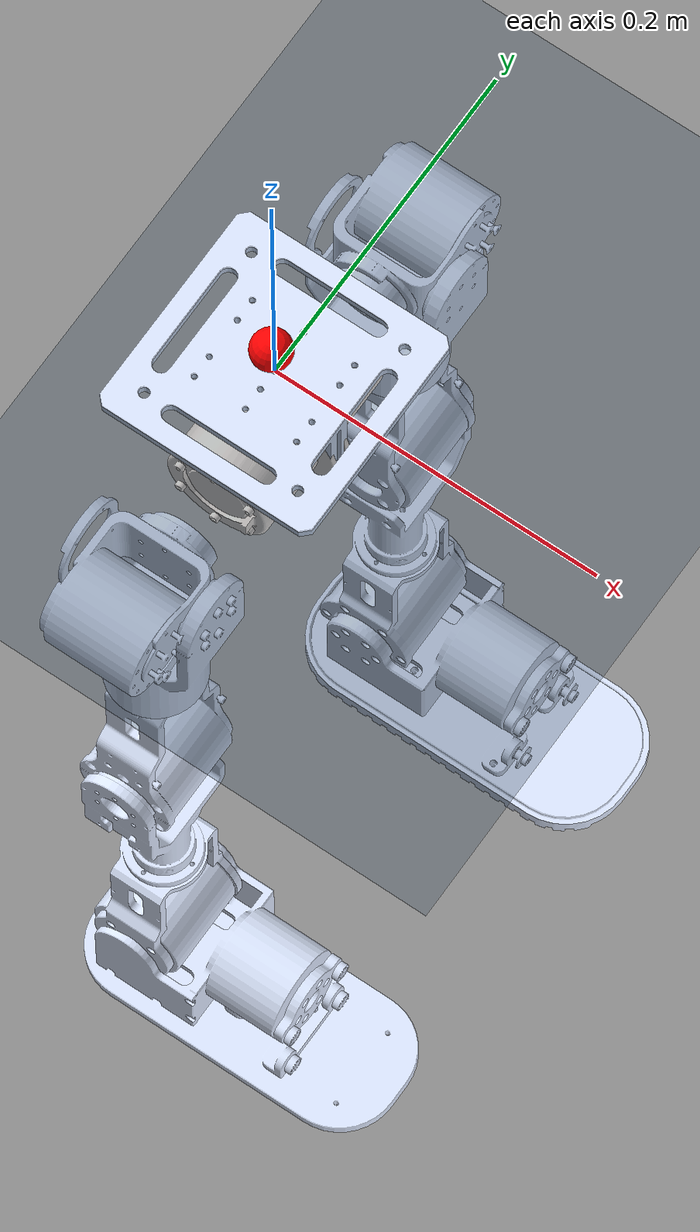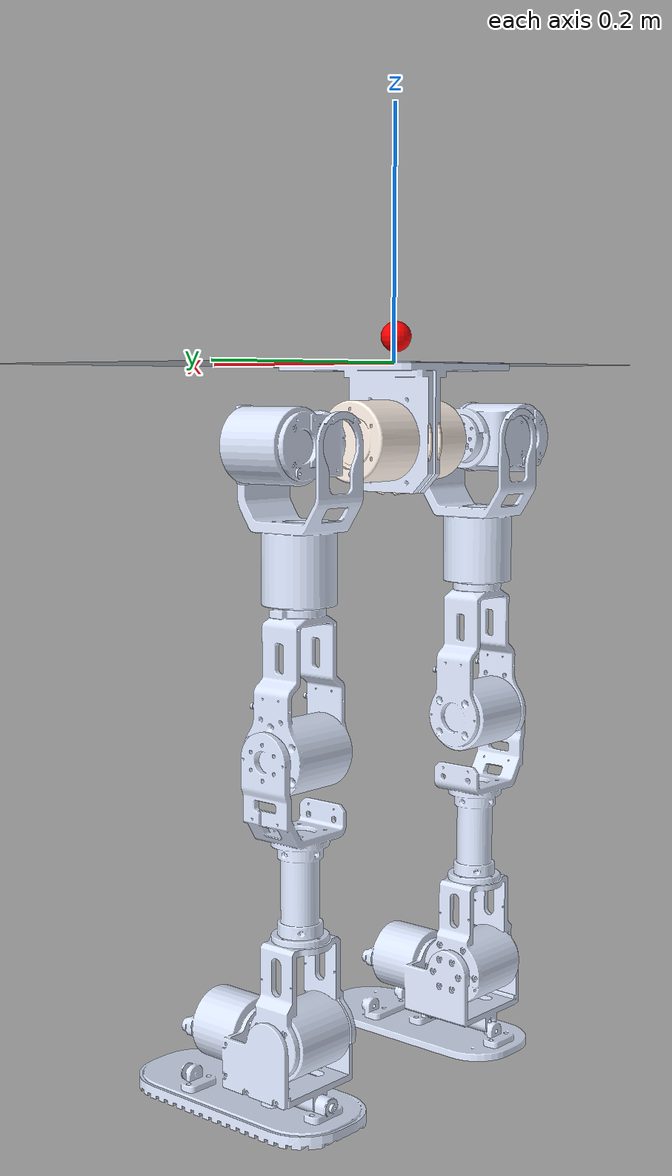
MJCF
<mujoco model="nlegs_limit_scene">
  <include file="nlegs_limit.xml"/>

  <asset>
    <texture name="texplane" type="2d" builtin="checker" rgb1=".2 .3 .4" rgb2=".1 0.15 0.2"
             width="512" height="512" mark="cross" markrgb=".8 .8 .8"/>
    <material name="matplane" reflectance="0." texture="texplane" texrepeat="1 1" texuniform="true"/>
  </asset>

  <worldbody>
    <light directional="true" diffuse=".4 .4 .4" specular="0.1 0.1 0.1" pos="0 0 5.0" dir="0 0 -1" castshadow="false"/>
    <light directional="true" diffuse=".6 .6 .6" specular="0.2 0.2 0.2" pos="0 0 4" dir="0 0 -1"/>
    <geom name="ground" type="plane" size="0 0 1" pos="0.001 0 0" quat="1 0 0 0" material="matplane" condim="1" conaffinity="15"/>
  </worldbody>
</mujoco>

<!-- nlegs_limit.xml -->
<mujoco model="nlegs">
  <compiler angle="radian" meshdir="../meshes/" />
  <default>
    <default class="visual">
      <geom type="mesh" contype="0" conaffinity="0" group="1"/>
    </default>
    <default class="collision">
      <geom type="capsule" contype="1" conaffinity="1" group="3" rgba="0.9373 0.2667 0.2667 1"/>
    </default>
  </default>
  <asset>
    <mesh name="base_link" file="base_link.STL" />
    <mesh name="Link_R0" file="Link_R0.STL" />
    <mesh name="Link_R1" file="Link_R1.STL" />
    <mesh name="Link_R2" file="Link_R2.STL" />
    <mesh name="Link_R3" file="Link_R3.STL" />
    <mesh name="Link_R4" file="Link_R4.STL" />
    <mesh name="Link_R5" file="Link_R5.STL" />
    <mesh name="Link_R6" file="Link_R6.STL" />
    <mesh name="Link_L0" file="Link_L0.STL" />
    <mesh name="Link_L1" file="Link_L1.STL" />
    <mesh name="Link_L2" file="Link_L2.STL" />
    <mesh name="Link_L3" file="Link_L3.STL" />
    <mesh name="Link_L4" file="Link_L4.STL" />
    <mesh name="Link_L5" file="Link_L5.STL" />
    <mesh name="Link_L6" file="Link_L6.STL" />
    <material name="base_mat" rgba="0.8667 0.9098 1 1" specular="0" />
    <material name="Link_R0_mat" rgba="1 0.949 0.9098 1" specular="0" />
    <material name="Link_R1_mat" rgba="0.8667 0.9098 1 1" specular="0" />
    <material name="Link_R2_mat" rgba="0.8667 0.9098 1 1" specular="0" />
    <material name="Link_R3_mat" rgba="0.8667 0.9098 1 1" specular="0" />
    <material name="Link_R4_mat" rgba="0.8667 0.9098 1 1" specular="0" />
    <material name="Link_R5_mat" rgba="0.8667 0.9098 1 1" specular="0" />
    <material name="Link_R6_mat" rgba="0.8667 0.9098 1 1" specular="0" />
    <material name="Link_L0_mat" rgba="1 0.949 0.9098 1" specular="0" />
    <material name="Link_L1_mat" rgba="0.8667 0.9098 1 1" specular="0" />
    <material name="Link_L2_mat" rgba="0.8667 0.9098 1 1" specular="0" />
    <material name="Link_L3_mat" rgba="0.8667 0.9098 1 1" specular="0" />
    <material name="Link_L4_mat" rgba="0.8667 0.9098 1 1" specular="0" />
    <material name="Link_L5_mat" rgba="0.8667 0.9098 1 1" specular="0" />
    <material name="Link_L6_mat" rgba="0.8667 0.9098 1 1" specular="0" />
  </asset>

  <worldbody>
    <!-- base 本体坐标系保持恒等(浮动根, 恒等出生即正立); 倒置 180°(Rx) 已烘焙进 base 外壳/惯量/imu 朝向及 R0/L0 挂点偏移, 与 body-quat 版物理等价 -->
    <body name="base" pos="0 0 0">
      <freejoint/>
      <site name="imu" pos="0 0 0" quat="1 0 0 0" group="3"/>
      <!-- body 版 base 惯性；质心按两侧髋 pitch 中点对齐后换算到旧版 base 坐标系。 -->
      <inertial pos="-0.002900663248 0.001527270050 0.020465005000" quat="0.000898118 0.736869 -0.00072205 0.676035" mass="6.33222" diaginertia="0.0153399 0.0119074 0.00964596"/>
      <geom name="base_com_marker" class="visual" type="sphere" pos="-0.002900663248 0.001527270050 0.020465005000" size="0.012" rgba="1 0 0 1" mass="0" density="0"/>
      <geom class="visual" material="base_mat" mesh="base_link" quat="0 1 0 0" />
      <body name="Link_R0" pos="0 0.0075 -0.061">
        <inertial pos="0.0000344 -0.0297324 0.0000527" mass="0.7356663" fullinertia="0.0004923 0.0004979 0.0005018 0.0000010 -0.0000000 -0.0000010"/>
        <geom class="visual" material="Link_R0_mat" mesh="Link_R0" />
        <body name="Link_R1" pos="0 -0.06025 0">
          <joint name="joint_R1" type="hinge" axis="0 1 0" limited="true" range="-0.85 1.0" damping="0" frictionloss="0"/>
          <inertial pos="-0.0016623 -0.0489172 0.0000772" mass="0.5080125" fullinertia="0.0002054 0.0002450 0.0002534 -0.0000110 0.0000003 0.0000000"/>
          <geom class="visual" material="Link_R1_mat" mesh="Link_R1" />
          <body name="Link_R2" pos="0 -0.0581444 0">
            <joint name="joint_R2" type="hinge" axis="1 0 0" limited="true" range="-0.5 0.26" damping="0" frictionloss="0"/>
            <inertial pos="0.0046774 0 -0.0743865" mass="0.5459822" fullinertia="0.0003158 0.0003989 0.0003074 -0.0000000 -0.0000331 0.0000000"/>
            <geom class="visual" material="Link_R2_mat" mesh="Link_R2" />
            <body name="Link_R3" pos="0.0001 0 -0.1215">
              <joint name="joint_R3" type="hinge" axis="0 0 1" limited="true" range="-0.55 0.55" damping="0" frictionloss="0"/>
              <inertial pos="0.0000000 0.0001813 -0.0958044" mass="0.5207862" fullinertia="0.0004243 0.0003483 0.0002701 0.0000000 -0.0000000 0.0000153"/>
              <geom class="visual" material="Link_R3_mat" mesh="Link_R3" />
              <body name="Link_R4" pos="0 0.0001 -0.112">
                <joint name="joint_R4" type="hinge" axis="0 1 0" limited="true" range="-0.3 1.9" damping="0" frictionloss="0"/>
                <inertial pos="0.0000000 -0.0025001 -0.1405535" mass="0.8551582" fullinertia="0.0005475 0.0004903 0.0003860 0.0000000 -0.0000000 0.0000278"/>
                <geom class="visual" material="Link_R4_mat" mesh="Link_R4" />
                <body name="Link_R5" pos="0 -0.0001 -0.221">
                  <joint name="joint_R5" type="hinge" axis="0 1 0" limited="true" range="-0.44 0.8" damping="0" frictionloss="0"/>
                  <inertial pos="0.0527104 0.0050326 -0.0065677" mass="0.5033846" fullinertia="0.0002571 0.0002633 0.0002396 0.0000093 -0.0000260 -0.0000190"/>
                  <geom class="visual" material="Link_R5_mat" mesh="Link_R5" />
                  <body name="Link_R6" pos="0 0 -0.0551148">
                    <joint name="joint_R6" type="hinge" axis="1 0 0" limited="true" range="-0.26 0.26" damping="0" frictionloss="0"/>
                    <inertial pos="0.0536922 0.0000122 -0.0064273" mass="0.3710611" fullinertia="0.0001976 0.0009926 0.0011867 0.0000000 -0.0000001 0.0000002"/>
                    <geom class="visual" material="Link_R6_mat" mesh="Link_R6" />
                    <geom class="collision" fromto="-0.04 0.03 -0.0015 0.14 0.03 -0.0015" size="0.012" />
                    <geom class="collision" fromto="-0.04 0 -0.0015 0.14 0 -0.0015" size="0.012" />
                    <geom class="collision" fromto="-0.04 -0.03 -0.0015 0.14 -0.03 -0.0015" size="0.012" />
                  </body>
                </body>
              </body>
            </body>
          </body>
        </body>
      </body>
      <body name="Link_L0" pos="0 -0.0075 -0.061">
        <inertial pos="0.0000344 0.0297324 -0.0000527" mass="0.7356663" fullinertia="0.0004923 0.0004979 0.0005018 -0.0000010 0.0000000 -0.0000010"/>
        <geom class="visual" material="Link_L0_mat" mesh="Link_L0" />
        <body name="Link_L1" pos="0 0.06025 0">
          <joint name="joint_L1" type="hinge" axis="0 1 0" limited="true" range="-0.85 1.0" damping="0" frictionloss="0"/>
          <inertial pos="0.0003881 0.0489172 0.0000772" mass="0.5080125" fullinertia="0.0002054 0.0002450 0.0002534 -0.0000110 0.0000003 -0.0000000"/>
          <geom class="visual" material="Link_L1_mat" mesh="Link_L1" />
          <body name="Link_L2" pos="0 0.0581444 0">
            <joint name="joint_L2" type="hinge" axis="1 0 0" limited="true" range="-0.26 0.5" damping="0" frictionloss="0"/>
            <inertial pos="0.0044774 0 -0.0743865" mass="0.5459822" fullinertia="0.0003158 0.0003989 0.0003074 -0.0000000 -0.0000331 0.0000000"/>
            <geom class="visual" material="Link_L2_mat" mesh="Link_L2" />
            <body name="Link_L3" pos="-0.0001 0 -0.1215">
              <joint name="joint_L3" type="hinge" axis="0 0 1" limited="true" range="-0.55 0.55" damping="0" frictionloss="0"/>
              <inertial pos="0.0000000 -0.0001081 -0.0958044" mass="0.5207862" fullinertia="0.0004243 0.0003483 0.0002701 -0.0000000 -0.0000000 -0.0000153"/>
              <geom class="visual" material="Link_L3_mat" mesh="Link_L3" />
              <body name="Link_L4" pos="0 0 -0.112">
                <joint name="joint_L4" type="hinge" axis="0 1 0" limited="true" range="-0.3 1.9" damping="0" frictionloss="0"/>
                <inertial pos="0.0000002 0.0024635 -0.1405535" mass="0.8551582" fullinertia="0.0005475 0.0004903 0.0003860 -0.0000000 -0.0000000 -0.0000278"/>
                <geom class="visual" material="Link_L4_mat" mesh="Link_L4" />
                <body name="Link_L5" pos="0 0 -0.221">
                  <joint name="joint_L5" type="hinge" axis="0 1 0" limited="true" range="-0.44 0.8" damping="0" frictionloss="0"/>
                  <inertial pos="0.0527759 -0.0054647 -0.0065610" mass="0.5033853" fullinertia="0.0002571 0.0002633 0.0002396 -0.0000093 -0.0000260 0.0000190"/>
                  <geom class="visual" material="Link_L5_mat" mesh="Link_L5" />
                  <body name="Link_L6" pos="0 0 -0.055093">
                    <joint name="joint_L6" type="hinge" axis="1 0 0" limited="true" range="-0.26 0.26" damping="0" frictionloss="0"/>
                    <inertial pos="0.0537921 -0.0007718 -0.0064273" mass="0.3710611" fullinertia="0.0001976 0.0009926 0.0011867 0.0000001 -0.0000001 0.0000000"/>
                    <geom class="visual" material="Link_L6_mat" mesh="Link_L6" />
                    <geom class="collision" fromto="-0.04 0.03 -0.0015 0.14 0.03 -0.0015" size="0.012" />
                    <geom class="collision" fromto="-0.04 0 -0.0015 0.14 0 -0.0015" size="0.012" />
                    <geom class="collision" fromto="-0.04 -0.03 -0.0015 0.14 -0.03 -0.0015" size="0.012" />
                  </body>
                </body>
              </body>
            </body>
          </body>
        </body>
      </body>
    </body>
  </worldbody>
  <actuator>
    <position name="joint_R1_servo" joint="joint_R1" kp="13.5" forcelimited="true" forcerange="-27 27" />
    <position name="joint_R2_servo" joint="joint_R2" kp="13.5" forcelimited="true" forcerange="-27 27" />
    <position name="joint_R3_servo" joint="joint_R3" kp="13.5" forcelimited="true" forcerange="-27 27" />
    <position name="joint_R4_servo" joint="joint_R4" kp="13.5" forcelimited="true" forcerange="-27 27" />
    <position name="joint_R5_servo" joint="joint_R5" kp="3.5" forcelimited="true" forcerange="-7 7" />
    <position name="joint_R6_servo" joint="joint_R6" kp="3.5" forcelimited="true" forcerange="-7 7" />
    <position name="joint_L1_servo" joint="joint_L1" kp="13.5" forcelimited="true" forcerange="-27 27" />
    <position name="joint_L2_servo" joint="joint_L2" kp="13.5" forcelimited="true" forcerange="-27 27" />
    <position name="joint_L3_servo" joint="joint_L3" kp="13.5" forcelimited="true" forcerange="-27 27" />
    <position name="joint_L4_servo" joint="joint_L4" kp="13.5" forcelimited="true" forcerange="-27 27" />
    <position name="joint_L5_servo" joint="joint_L5" kp="3.5" forcelimited="true" forcerange="-7 7" />
    <position name="joint_L6_servo" joint="joint_L6" kp="3.5" forcelimited="true" forcerange="-7 7" />
  </actuator>
  <sensor>
    <framequat name="imu_quat" objtype="site" objname="imu"/>
    <gyro name="imu_gyro" site="imu"/>
    <accelerometer name="imu_acc" site="imu"/>
    <framepos name="frame_pos" objtype="site" objname="imu"/>
    <framelinvel name="frame_vel" objtype="site" objname="imu"/>
  </sensor>
</mujoco>
